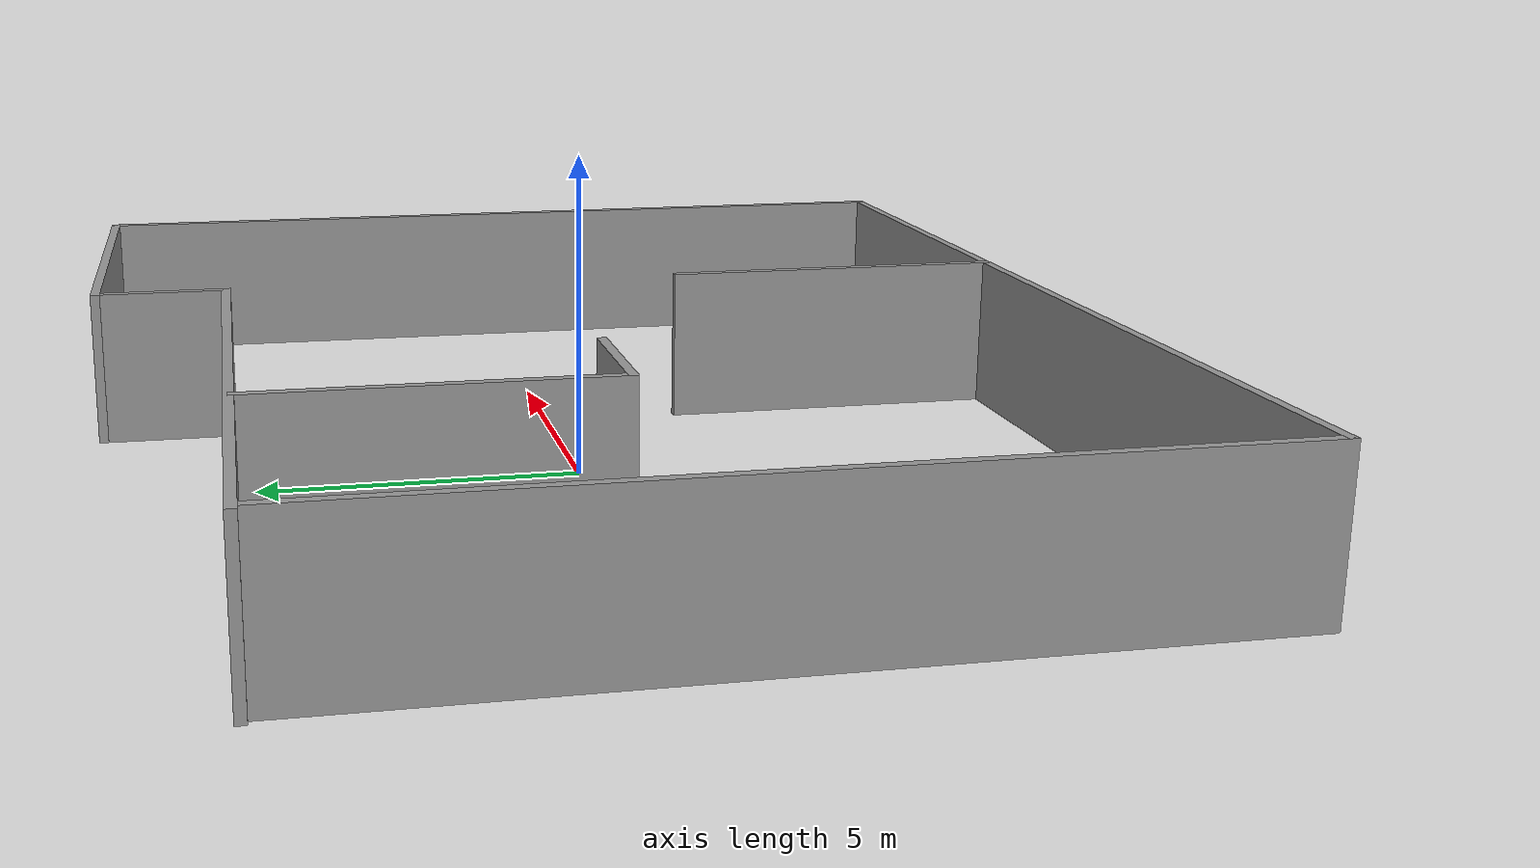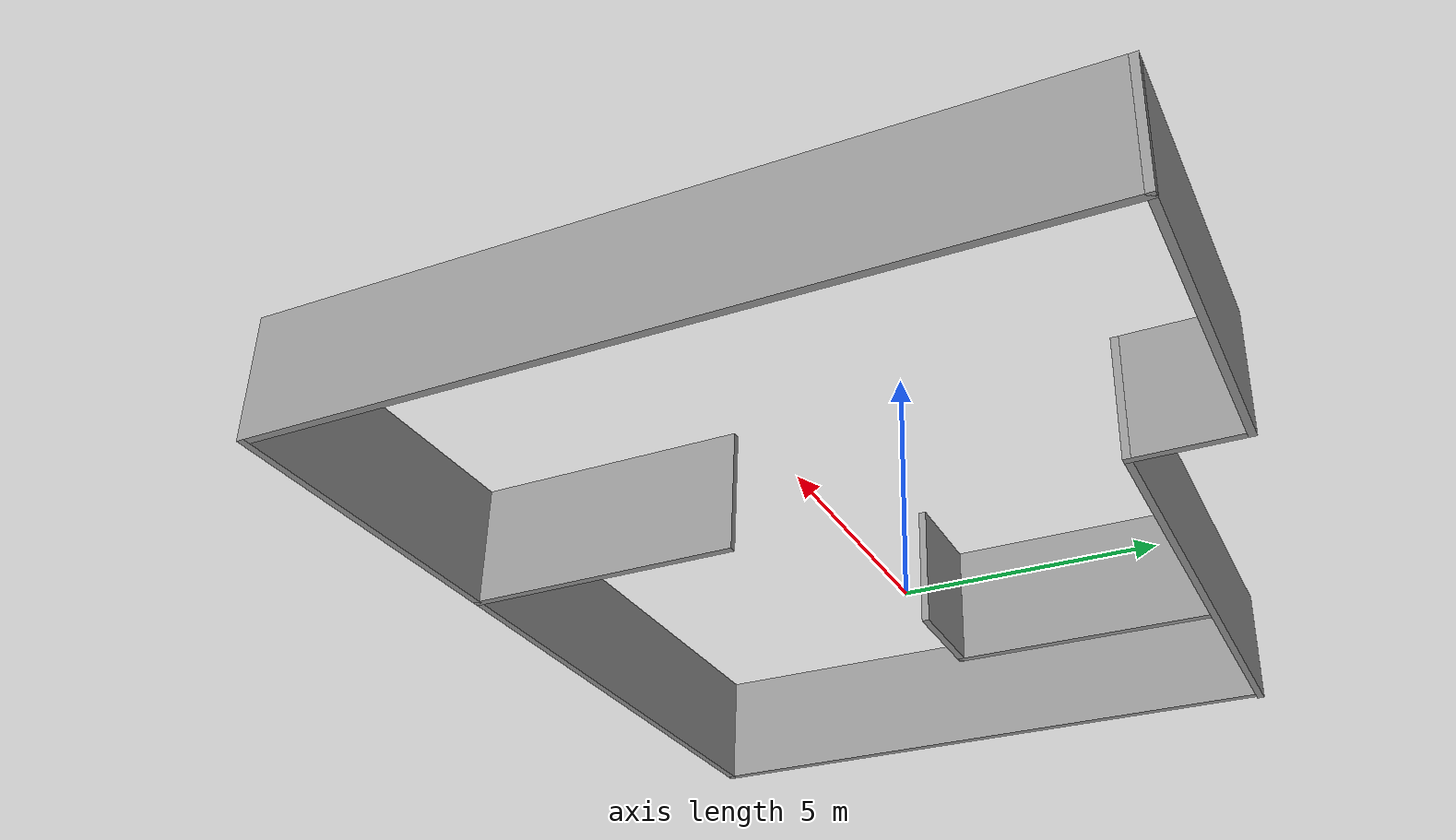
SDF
<?xml version='1.0'?>
<sdf version='1.6'>
  <model name='large_world'>
    <pose frame=''>0.850656 -0.254581 0 0 -0 0</pose>
    <link name='Wall_10'>
      <collision name='Wall_10_Collision'>
        <geometry>
          <box>
            <size>6.75 0.15 2.5</size>
          </box>
        </geometry>
        <pose frame=''>0 0 1.25 0 -0 0</pose>
      </collision>
      <visual name='Wall_10_Visual'>
        <pose frame=''>0 0 1.25 0 -0 0</pose>
        <geometry>
          <box>
            <size>6.75 0.15 2.5</size>
          </box>
        </geometry>
        <material>
          <script>
            <uri>file://media/materials/scripts/gazebo.material</uri>
            <name>Gazebo/Grey</name>
          </script>
          <ambient>1 1 1 1</ambient>
        </material>
      </visual>
      <pose frame=''>5.675 7.675 0 0 -0 3.14159</pose>
    </link>
    <link name='Wall_12'>
      <collision name='Wall_12_Collision'>
        <geometry>
          <box>
            <size>2.25 0.15 2.5</size>
          </box>
        </geometry>
        <pose frame=''>0 0 1.25 0 -0 0</pose>
      </collision>
      <visual name='Wall_12_Visual'>
        <pose frame=''>0 0 1.25 0 -0 0</pose>
        <geometry>
          <box>
            <size>2.25 0.15 2.5</size>
          </box>
        </geometry>
        <material>
          <script>
            <uri>file://media/materials/scripts/gazebo.material</uri>
            <name>Gazebo/Grey</name>
          </script>
          <ambient>1 1 1 1</ambient>
        </material>
      </visual>
      <pose frame=''>2.375 6.625 0 0 0 -1.5708</pose>
    </link>
    <link name='Wall_13'>
      <collision name='Wall_13_Collision'>
        <geometry>
          <box>
            <size>11.5 0.15 2.5</size>
          </box>
        </geometry>
        <pose frame=''>0 0 1.25 0 -0 0</pose>
      </collision>
      <visual name='Wall_13_Visual'>
        <pose frame=''>0 0 1.25 0 -0 0</pose>
        <geometry>
          <box>
            <size>11.5 0.15 2.5</size>
          </box>
        </geometry>
        <material>
          <script>
            <uri>file://media/materials/scripts/gazebo.material</uri>
            <name>Gazebo/Grey</name>
          </script>
          <ambient>1 1 1 1</ambient>
        </material>
      </visual>
      <pose frame=''>-3.3 5.575 0 0 -0 3.14159</pose>
    </link>
    <link name='Wall_15'>
      <collision name='Wall_15_Collision'>
        <geometry>
          <box>
            <size>5.5 0.15 2.5</size>
          </box>
        </geometry>
        <pose frame=''>0 0 1.25 0 -0 0</pose>
      </collision>
      <visual name='Wall_15_Visual'>
        <pose frame=''>0 0 1.25 0 -0 0</pose>
        <geometry>
          <box>
            <size>5.5 0.15 2.5</size>
          </box>
        </geometry>
        <material>
          <script>
            <uri>file://media/materials/scripts/gazebo.material</uri>
            <name>Gazebo/Grey</name>
          </script>
          <ambient>1 1 1 1</ambient>
        </material>
      </visual>
      <pose frame=''>-4.31824 2.83632 0 0 0 -1.5708</pose>
    </link>
    <link name='Wall_16'>
      <collision name='Wall_16_Collision'>
        <geometry>
          <box>
            <size>2.25 0.15 2.5</size>
          </box>
        </geometry>
        <pose frame=''>0 0 1.25 0 -0 0</pose>
      </collision>
      <visual name='Wall_16_Visual'>
        <pose frame=''>0 0 1.25 0 -0 0</pose>
        <geometry>
          <box>
            <size>2.25 0.15 2.5</size>
          </box>
        </geometry>
        <material>
          <script>
            <uri>file://media/materials/scripts/gazebo.material</uri>
            <name>Gazebo/Grey</name>
          </script>
          <ambient>1 1 1 1</ambient>
        </material>
      </visual>
      <pose frame=''>-3.26824 0.161323 0 0 -0 0</pose>
    </link>
    <link name='Wall_18'>
      <collision name='Wall_18_Collision'>
        <geometry>
          <box>
            <size>5.75 0.15 2.5</size>
          </box>
        </geometry>
        <pose frame=''>0 0 1.25 0 -0 0</pose>
      </collision>
      <visual name='Wall_18_Visual'>
        <pose frame=''>0 0 1.25 0 -0 0</pose>
        <geometry>
          <box>
            <size>5.75 0.15 2.5</size>
          </box>
        </geometry>
        <material>
          <script>
            <uri>file://media/materials/scripts/gazebo.material</uri>
            <name>Gazebo/Grey</name>
          </script>
          <ambient>1 1 1 1</ambient>
        </material>
      </visual>
      <pose frame=''>2.22807 -4.87307 0 0 -0 1.5708</pose>
    </link>
    <link name='Wall_5'>
      <collision name='Wall_5_Collision'>
        <geometry>
          <box>
            <size>13.25 0.15 2.5</size>
          </box>
        </geometry>
        <pose frame=''>0 0 1.25 0 -0 0</pose>
      </collision>
      <visual name='Wall_5_Visual'>
        <pose frame=''>0 0 1.25 0 -0 0</pose>
        <geometry>
          <box>
            <size>13.25 0.15 2.5</size>
          </box>
        </geometry>
        <material>
          <script>
            <uri>file://media/materials/scripts/gazebo.material</uri>
            <name>Gazebo/Grey</name>
          </script>
          <ambient>1 1 1 1</ambient>
        </material>
      </visual>
      <pose frame=''>-8.875 -1.125 0 0 0 -1.5708</pose>
    </link>
    <link name='Wall_6'>
      <collision name='Wall_6_Collision'>
        <geometry>
          <box>
            <size>18 0.15 2.5</size>
          </box>
        </geometry>
        <pose frame=''>0 0 1.25 0 -0 0</pose>
      </collision>
      <visual name='Wall_6_Visual'>
        <pose frame=''>0 0 1.25 0 -0 0</pose>
        <geometry>
          <box>
            <size>18 0.15 2.5</size>
          </box>
        </geometry>
        <material>
          <script>
            <uri>file://media/materials/scripts/gazebo.material</uri>
            <name>Gazebo/Grey</name>
          </script>
          <ambient>1 1 1 1</ambient>
        </material>
      </visual>
      <pose frame=''>0.049999 -7.675 0 0 -0 0</pose>
    </link>
    <link name='Wall_7'>
      <collision name='Wall_7_Collision'>
        <geometry>
          <box>
            <size>15.5 0.15 2.5</size>
          </box>
        </geometry>
        <pose frame=''>0 0 1.25 0 -0 0</pose>
      </collision>
      <visual name='Wall_7_Visual'>
        <pose frame=''>0 0 1.25 0 -0 0</pose>
        <geometry>
          <box>
            <size>15.5 0.15 2.5</size>
          </box>
        </geometry>
        <material>
          <script>
            <uri>file://media/materials/scripts/gazebo.material</uri>
            <name>Gazebo/Grey</name>
          </script>
          <ambient>1 1 1 1</ambient>
        </material>
      </visual>
      <pose frame=''>8.975 0 0 0 -0 1.5708</pose>
    </link>
    <static>1</static>
  </model>
</sdf>
